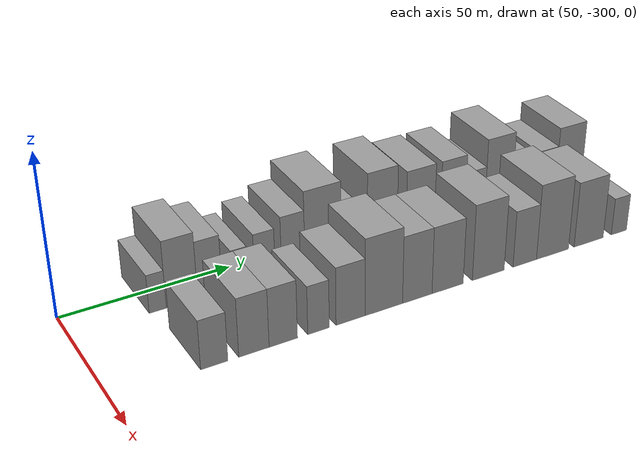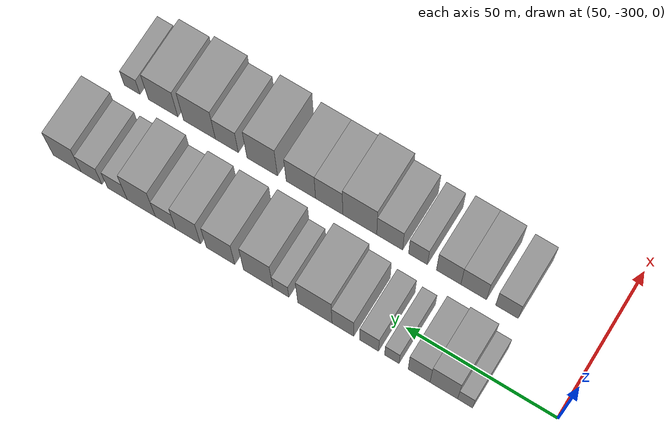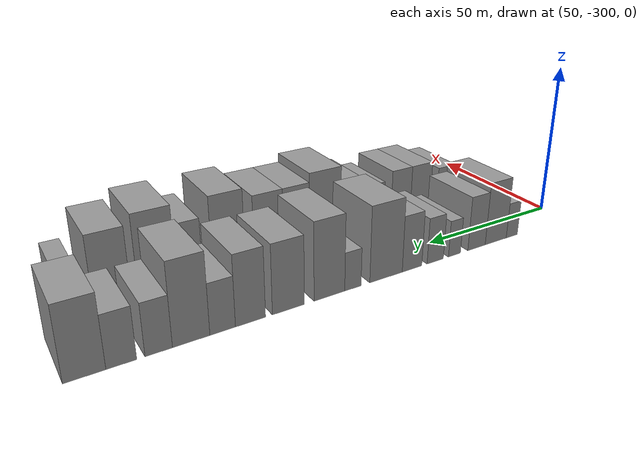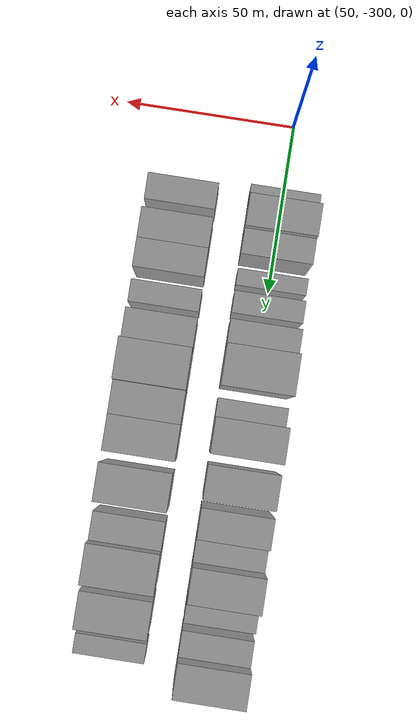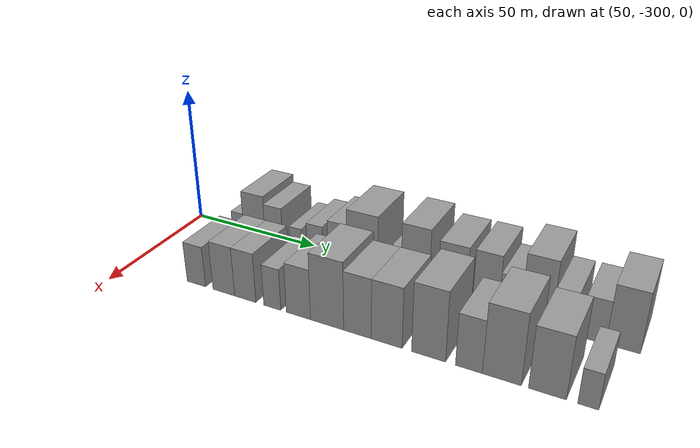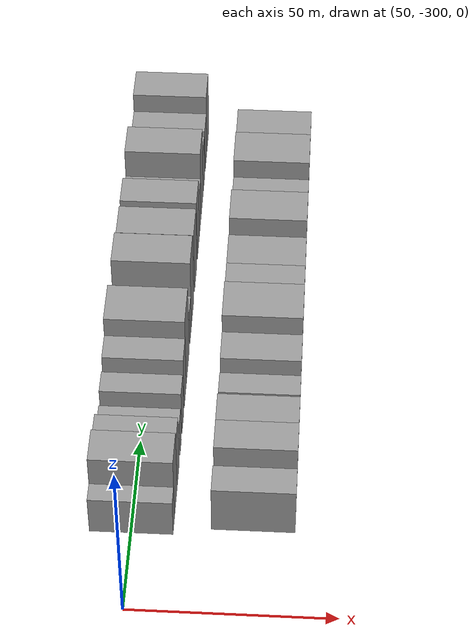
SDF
<sdf version="1.6">
 <world name="default">
  <model name="building_1">
   <static>1</static>
   <pose>50.0000 -275.5481 0 0.000000 0.000000 0.000000</pose>
   <link name="link">
    <pose>0 0 6.00 0 0 0</pose>
    <collision name="collision"><geometry><box><size>20.0000 4.9038 12.0000</size></box></geometry></collision>
    <visual name="visual">
     <cast_shadows>0</cast_shadows>
     <geometry><box><size>20.0000 4.9038 12.0000</size></box></geometry>
     <material>
      <script>
       <uri>model://grey_wall/materials/scripts</uri>
       <uri>model://grey_wall/materials/textures</uri>
       <name>vrc/grey_wall</name>
      </script>
     </material>
    </visual>
   </link>
  </model>
  <model name="building_2">
   <static>1</static>
   <pose>50.0000 -268.5620 0 0.000000 0.000000 0.000000</pose>
   <link name="link">
    <pose>0 0 10.50 0 0 0</pose>
    <collision name="collision"><geometry><box><size>20.0000 9.0684 21.0000</size></box></geometry></collision>
    <visual name="visual">
     <cast_shadows>0</cast_shadows>
     <geometry><box><size>20.0000 9.0684 21.0000</size></box></geometry>
     <material>
      <script>
       <uri>model://grey_wall/materials/scripts</uri>
       <uri>model://grey_wall/materials/textures</uri>
       <name>vrc/grey_wall</name>
      </script>
     </material>
    </visual>
   </link>
  </model>
  <model name="building_3">
   <static>1</static>
   <pose>50.0000 -260.4158 0 0.000000 0.000000 0.000000</pose>
   <link name="link">
    <pose>0 0 9.00 0 0 0</pose>
    <collision name="collision"><geometry><box><size>20.0000 7.2238 18.0000</size></box></geometry></collision>
    <visual name="visual">
     <cast_shadows>0</cast_shadows>
     <geometry><box><size>20.0000 7.2238 18.0000</size></box></geometry>
     <material>
      <script>
       <uri>model://grey_wall/materials/scripts</uri>
       <uri>model://grey_wall/materials/textures</uri>
       <name>vrc/grey_wall</name>
      </script>
     </material>
    </visual>
   </link>
  </model>
  <model name="building_4">
   <static>1</static>
   <pose>50.0000 -251.4031 0 0.000000 0.000000 0.000000</pose>
   <link name="link">
    <pose>0 0 6.00 0 0 0</pose>
    <collision name="collision"><geometry><box><size>20.0000 4.8017 12.0000</size></box></geometry></collision>
    <visual name="visual">
     <cast_shadows>0</cast_shadows>
     <geometry><box><size>20.0000 4.8017 12.0000</size></box></geometry>
     <material>
      <script>
       <uri>model://grey_wall/materials/scripts</uri>
       <uri>model://grey_wall/materials/textures</uri>
       <name>vrc/grey_wall</name>
      </script>
     </material>
    </visual>
   </link>
  </model>
  <model name="building_5">
   <static>1</static>
   <pose>50.0000 -243.8589 0 0.000000 0.000000 0.000000</pose>
   <link name="link">
    <pose>0 0 7.50 0 0 0</pose>
    <collision name="collision"><geometry><box><size>20.0000 6.2866 15.0000</size></box></geometry></collision>
    <visual name="visual">
     <cast_shadows>0</cast_shadows>
     <geometry><box><size>20.0000 6.2866 15.0000</size></box></geometry>
     <material>
      <script>
       <uri>model://grey_wall/materials/scripts</uri>
       <uri>model://grey_wall/materials/textures</uri>
       <name>vrc/grey_wall</name>
      </script>
     </material>
    </visual>
   </link>
  </model>
  <model name="building_6">
   <static>1</static>
   <pose>50.0000 -235.0835 0 0.000000 0.000000 0.000000</pose>
   <link name="link">
    <pose>0 0 9.00 0 0 0</pose>
    <collision name="collision"><geometry><box><size>20.0000 7.2641 18.0000</size></box></geometry></collision>
    <visual name="visual">
     <cast_shadows>0</cast_shadows>
     <geometry><box><size>20.0000 7.2641 18.0000</size></box></geometry>
     <material>
      <script>
       <uri>model://grey_wall/materials/scripts</uri>
       <uri>model://grey_wall/materials/textures</uri>
       <name>vrc/grey_wall</name>
      </script>
     </material>
    </visual>
   </link>
  </model>
  <model name="building_7">
   <static>1</static>
   <pose>50.0000 -225.6979 0 0.000000 0.000000 0.000000</pose>
   <link name="link">
    <pose>0 0 12.00 0 0 0</pose>
    <collision name="collision"><geometry><box><size>20.0000 11.5071 24.0000</size></box></geometry></collision>
    <visual name="visual">
     <cast_shadows>0</cast_shadows>
     <geometry><box><size>20.0000 11.5071 24.0000</size></box></geometry>
     <material>
      <script>
       <uri>model://grey_wall/materials/scripts</uri>
       <uri>model://grey_wall/materials/textures</uri>
       <name>vrc/grey_wall</name>
      </script>
     </material>
    </visual>
   </link>
  </model>
  <model name="building_8">
   <static>1</static>
   <pose>50.0000 -214.2070 0 0.000000 0.000000 0.000000</pose>
   <link name="link">
    <pose>0 0 6.00 0 0 0</pose>
    <collision name="collision"><geometry><box><size>20.0000 5.4747 12.0000</size></box></geometry></collision>
    <visual name="visual">
     <cast_shadows>0</cast_shadows>
     <geometry><box><size>20.0000 5.4747 12.0000</size></box></geometry>
     <material>
      <script>
       <uri>model://grey_wall/materials/scripts</uri>
       <uri>model://grey_wall/materials/textures</uri>
       <name>vrc/grey_wall</name>
      </script>
     </material>
    </visual>
   </link>
  </model>
  <model name="building_9">
   <static>1</static>
   <pose>50.0000 -206.5053 0 0.000000 0.000000 0.000000</pose>
   <link name="link">
    <pose>0 0 12.00 0 0 0</pose>
    <collision name="collision"><geometry><box><size>20.0000 9.9287 24.0000</size></box></geometry></collision>
    <visual name="visual">
     <cast_shadows>0</cast_shadows>
     <geometry><box><size>20.0000 9.9287 24.0000</size></box></geometry>
     <material>
      <script>
       <uri>model://grey_wall/materials/scripts</uri>
       <uri>model://grey_wall/materials/textures</uri>
       <name>vrc/grey_wall</name>
      </script>
     </material>
    </visual>
   </link>
  </model>
  <model name="building_10">
   <static>1</static>
   <pose>50.0000 -193.6830 0 0.000000 0.000000 0.000000</pose>
   <link name="link">
    <pose>0 0 10.50 0 0 0</pose>
    <collision name="collision"><geometry><box><size>20.0000 9.7158 21.0000</size></box></geometry></collision>
    <visual name="visual">
     <cast_shadows>0</cast_shadows>
     <geometry><box><size>20.0000 9.7158 21.0000</size></box></geometry>
     <material>
      <script>
       <uri>model://grey_wall/materials/scripts</uri>
       <uri>model://grey_wall/materials/textures</uri>
       <name>vrc/grey_wall</name>
      </script>
     </material>
    </visual>
   </link>
  </model>
  <model name="building_11">
   <static>1</static>
   <pose>50.0000 -182.5326 0 0.000000 0.000000 0.000000</pose>
   <link name="link">
    <pose>0 0 10.50 0 0 0</pose>
    <collision name="collision"><geometry><box><size>20.0000 8.5851 21.0000</size></box></geometry></collision>
    <visual name="visual">
     <cast_shadows>0</cast_shadows>
     <geometry><box><size>20.0000 8.5851 21.0000</size></box></geometry>
     <material>
      <script>
       <uri>model://grey_wall/materials/scripts</uri>
       <uri>model://grey_wall/materials/textures</uri>
       <name>vrc/grey_wall</name>
      </script>
     </material>
    </visual>
   </link>
  </model>
  <model name="building_12">
   <static>1</static>
   <pose>50.0000 -174.7368 0 0.000000 0.000000 0.000000</pose>
   <link name="link">
    <pose>0 0 7.50 0 0 0</pose>
    <collision name="collision"><geometry><box><size>20.0000 7.0065 15.0000</size></box></geometry></collision>
    <visual name="visual">
     <cast_shadows>0</cast_shadows>
     <geometry><box><size>20.0000 7.0065 15.0000</size></box></geometry>
     <material>
      <script>
       <uri>model://grey_wall/materials/scripts</uri>
       <uri>model://grey_wall/materials/textures</uri>
       <name>vrc/grey_wall</name>
      </script>
     </material>
    </visual>
   </link>
  </model>
  <model name="building_13">
   <static>1</static>
   <pose>50.0000 -166.3466 0 0.000000 0.000000 0.000000</pose>
   <link name="link">
    <pose>0 0 12.00 0 0 0</pose>
    <collision name="collision"><geometry><box><size>20.0000 9.7737 24.0000</size></box></geometry></collision>
    <visual name="visual">
     <cast_shadows>0</cast_shadows>
     <geometry><box><size>20.0000 9.7737 24.0000</size></box></geometry>
     <material>
      <script>
       <uri>model://grey_wall/materials/scripts</uri>
       <uri>model://grey_wall/materials/textures</uri>
       <name>vrc/grey_wall</name>
      </script>
     </material>
    </visual>
   </link>
  </model>
  <model name="building_14">
   <static>1</static>
   <pose>50.0000 -158.0214 0 0.000000 0.000000 0.000000</pose>
   <link name="link">
    <pose>0 0 7.50 0 0 0</pose>
    <collision name="collision"><geometry><box><size>20.0000 6.8768 15.0000</size></box></geometry></collision>
    <visual name="visual">
     <cast_shadows>0</cast_shadows>
     <geometry><box><size>20.0000 6.8768 15.0000</size></box></geometry>
     <material>
      <script>
       <uri>model://grey_wall/materials/scripts</uri>
       <uri>model://grey_wall/materials/textures</uri>
       <name>vrc/grey_wall</name>
      </script>
     </material>
    </visual>
   </link>
  </model>
  <model name="building_15">
   <static>1</static>
   <pose>50.0000 -148.9271 0 0.000000 0.000000 0.000000</pose>
   <link name="link">
    <pose>0 0 7.50 0 0 0</pose>
    <collision name="collision"><geometry><box><size>20.0000 7.3119 15.0000</size></box></geometry></collision>
    <visual name="visual">
     <cast_shadows>0</cast_shadows>
     <geometry><box><size>20.0000 7.3119 15.0000</size></box></geometry>
     <material>
      <script>
       <uri>model://grey_wall/materials/scripts</uri>
       <uri>model://grey_wall/materials/textures</uri>
       <name>vrc/grey_wall</name>
      </script>
     </material>
    </visual>
   </link>
  </model>
  <model name="building_16">
   <static>1</static>
   <pose>50.0000 -140.3689 0 0.000000 0.000000 0.000000</pose>
   <link name="link">
    <pose>0 0 10.50 0 0 0</pose>
    <collision name="collision"><geometry><box><size>20.0000 9.8044 21.0000</size></box></geometry></collision>
    <visual name="visual">
     <cast_shadows>0</cast_shadows>
     <geometry><box><size>20.0000 9.8044 21.0000</size></box></geometry>
     <material>
      <script>
       <uri>model://grey_wall/materials/scripts</uri>
       <uri>model://grey_wall/materials/textures</uri>
       <name>vrc/grey_wall</name>
      </script>
     </material>
    </visual>
   </link>
  </model>
  <model name="building_62">
   <static>1</static>
   <pose>79.0000 -272.2514 0 0.000000 0.000000 0.000000</pose>
   <link name="link">
    <pose>0 0 7.50 0 0 0</pose>
    <collision name="collision"><geometry><box><size>20.0000 7.4972 15.0000</size></box></geometry></collision>
    <visual name="visual">
     <cast_shadows>0</cast_shadows>
     <geometry><box><size>20.0000 7.4972 15.0000</size></box></geometry>
     <material>
      <script>
       <uri>model://grey_wall/materials/scripts</uri>
       <uri>model://grey_wall/materials/textures</uri>
       <name>vrc/grey_wall</name>
      </script>
     </material>
    </visual>
   </link>
  </model>
  <model name="building_63">
   <static>1</static>
   <pose>79.0000 -261.2175 0 0.000000 0.000000 0.000000</pose>
   <link name="link">
    <pose>0 0 9.00 0 0 0</pose>
    <collision name="collision"><geometry><box><size>20.0000 8.5707 18.0000</size></box></geometry></collision>
    <visual name="visual">
     <cast_shadows>0</cast_shadows>
     <geometry><box><size>20.0000 8.5707 18.0000</size></box></geometry>
     <material>
      <script>
       <uri>model://grey_wall/materials/scripts</uri>
       <uri>model://grey_wall/materials/textures</uri>
       <name>vrc/grey_wall</name>
      </script>
     </material>
    </visual>
   </link>
  </model>
  <model name="building_64">
   <static>1</static>
   <pose>79.0000 -252.8536 0 0.000000 0.000000 0.000000</pose>
   <link name="link">
    <pose>0 0 9.00 0 0 0</pose>
    <collision name="collision"><geometry><box><size>20.0000 8.1570 18.0000</size></box></geometry></collision>
    <visual name="visual">
     <cast_shadows>0</cast_shadows>
     <geometry><box><size>20.0000 8.1570 18.0000</size></box></geometry>
     <material>
      <script>
       <uri>model://grey_wall/materials/scripts</uri>
       <uri>model://grey_wall/materials/textures</uri>
       <name>vrc/grey_wall</name>
      </script>
     </material>
    </visual>
   </link>
  </model>
  <model name="building_65">
   <static>1</static>
   <pose>79.0000 -242.6065 0 0.000000 0.000000 0.000000</pose>
   <link name="link">
    <pose>0 0 7.50 0 0 0</pose>
    <collision name="collision"><geometry><box><size>20.0000 6.3374 15.0000</size></box></geometry></collision>
    <visual name="visual">
     <cast_shadows>0</cast_shadows>
     <geometry><box><size>20.0000 6.3374 15.0000</size></box></geometry>
     <material>
      <script>
       <uri>model://grey_wall/materials/scripts</uri>
       <uri>model://grey_wall/materials/textures</uri>
       <name>vrc/grey_wall</name>
      </script>
     </material>
    </visual>
   </link>
  </model>
  <model name="building_66">
   <static>1</static>
   <pose>79.0000 -233.0617 0 0.000000 0.000000 0.000000</pose>
   <link name="link">
    <pose>0 0 9.00 0 0 0</pose>
    <collision name="collision"><geometry><box><size>20.0000 8.7522 18.0000</size></box></geometry></collision>
    <visual name="visual">
     <cast_shadows>0</cast_shadows>
     <geometry><box><size>20.0000 8.7522 18.0000</size></box></geometry>
     <material>
      <script>
       <uri>model://grey_wall/materials/scripts</uri>
       <uri>model://grey_wall/materials/textures</uri>
       <name>vrc/grey_wall</name>
      </script>
     </material>
    </visual>
   </link>
  </model>
  <model name="building_67">
   <static>1</static>
   <pose>79.0000 -222.9079 0 0.000000 0.000000 0.000000</pose>
   <link name="link">
    <pose>0 0 12.00 0 0 0</pose>
    <collision name="collision"><geometry><box><size>20.0000 11.5553 24.0000</size></box></geometry></collision>
    <visual name="visual">
     <cast_shadows>0</cast_shadows>
     <geometry><box><size>20.0000 11.5553 24.0000</size></box></geometry>
     <material>
      <script>
       <uri>model://grey_wall/materials/scripts</uri>
       <uri>model://grey_wall/materials/textures</uri>
       <name>vrc/grey_wall</name>
      </script>
     </material>
    </visual>
   </link>
  </model>
  <model name="building_68">
   <static>1</static>
   <pose>79.0000 -212.4812 0 0.000000 0.000000 0.000000</pose>
   <link name="link">
    <pose>0 0 10.50 0 0 0</pose>
    <collision name="collision"><geometry><box><size>20.0000 9.2982 21.0000</size></box></geometry></collision>
    <visual name="visual">
     <cast_shadows>0</cast_shadows>
     <geometry><box><size>20.0000 9.2982 21.0000</size></box></geometry>
     <material>
      <script>
       <uri>model://grey_wall/materials/scripts</uri>
       <uri>model://grey_wall/materials/textures</uri>
       <name>vrc/grey_wall</name>
      </script>
     </material>
    </visual>
   </link>
  </model>
  <model name="building_69">
   <static>1</static>
   <pose>79.0000 -202.8003 0 0.000000 0.000000 0.000000</pose>
   <link name="link">
    <pose>0 0 10.50 0 0 0</pose>
    <collision name="collision"><geometry><box><size>20.0000 10.0636 21.0000</size></box></geometry></collision>
    <visual name="visual">
     <cast_shadows>0</cast_shadows>
     <geometry><box><size>20.0000 10.0636 21.0000</size></box></geometry>
     <material>
      <script>
       <uri>model://grey_wall/materials/scripts</uri>
       <uri>model://grey_wall/materials/textures</uri>
       <name>vrc/grey_wall</name>
      </script>
     </material>
    </visual>
   </link>
  </model>
  <model name="building_70">
   <static>1</static>
   <pose>79.0000 -189.4865 0 0.000000 0.000000 0.000000</pose>
   <link name="link">
    <pose>0 0 12.00 0 0 0</pose>
    <collision name="collision"><geometry><box><size>20.0000 10.5639 24.0000</size></box></geometry></collision>
    <visual name="visual">
     <cast_shadows>0</cast_shadows>
     <geometry><box><size>20.0000 10.5639 24.0000</size></box></geometry>
     <material>
      <script>
       <uri>model://grey_wall/materials/scripts</uri>
       <uri>model://grey_wall/materials/textures</uri>
       <name>vrc/grey_wall</name>
      </script>
     </material>
    </visual>
   </link>
  </model>
  <model name="building_71">
   <static>1</static>
   <pose>79.0000 -177.2088 0 0.000000 0.000000 0.000000</pose>
   <link name="link">
    <pose>0 0 9.00 0 0 0</pose>
    <collision name="collision"><geometry><box><size>20.0000 7.9917 18.0000</size></box></geometry></collision>
    <visual name="visual">
     <cast_shadows>0</cast_shadows>
     <geometry><box><size>20.0000 7.9917 18.0000</size></box></geometry>
     <material>
      <script>
       <uri>model://grey_wall/materials/scripts</uri>
       <uri>model://grey_wall/materials/textures</uri>
       <name>vrc/grey_wall</name>
      </script>
     </material>
    </visual>
   </link>
  </model>
  <model name="building_72">
   <static>1</static>
   <pose>79.0000 -167.6345 0 0.000000 0.000000 0.000000</pose>
   <link name="link">
    <pose>0 0 12.00 0 0 0</pose>
    <collision name="collision"><geometry><box><size>20.0000 11.1567 24.0000</size></box></geometry></collision>
    <visual name="visual">
     <cast_shadows>0</cast_shadows>
     <geometry><box><size>20.0000 11.1567 24.0000</size></box></geometry>
     <material>
      <script>
       <uri>model://grey_wall/materials/scripts</uri>
       <uri>model://grey_wall/materials/textures</uri>
       <name>vrc/grey_wall</name>
      </script>
     </material>
    </visual>
   </link>
  </model>
  <model name="building_73">
   <static>1</static>
   <pose>79.0000 -154.8669 0 0.000000 0.000000 0.000000</pose>
   <link name="link">
    <pose>0 0 10.50 0 0 0</pose>
    <collision name="collision"><geometry><box><size>20.0000 10.3785 21.0000</size></box></geometry></collision>
    <visual name="visual">
     <cast_shadows>0</cast_shadows>
     <geometry><box><size>20.0000 10.3785 21.0000</size></box></geometry>
     <material>
      <script>
       <uri>model://grey_wall/materials/scripts</uri>
       <uri>model://grey_wall/materials/textures</uri>
       <name>vrc/grey_wall</name>
      </script>
     </material>
    </visual>
   </link>
  </model>
  <model name="building_74">
   <static>1</static>
   <pose>79.0000 -143.9066 0 0.000000 0.000000 0.000000</pose>
   <link name="link">
    <pose>0 0 6.00 0 0 0</pose>
    <collision name="collision"><geometry><box><size>20.0000 5.5421 12.0000</size></box></geometry></collision>
    <visual name="visual">
     <cast_shadows>0</cast_shadows>
     <geometry><box><size>20.0000 5.5421 12.0000</size></box></geometry>
     <material>
      <script>
       <uri>model://grey_wall/materials/scripts</uri>
       <uri>model://grey_wall/materials/textures</uri>
       <name>vrc/grey_wall</name>
      </script>
     </material>
    </visual>
   </link>
  </model>
 </world>
</sdf>
